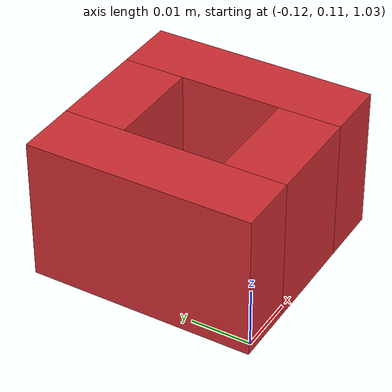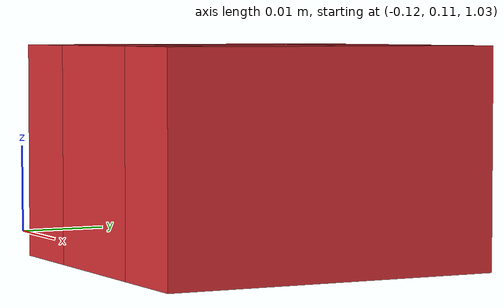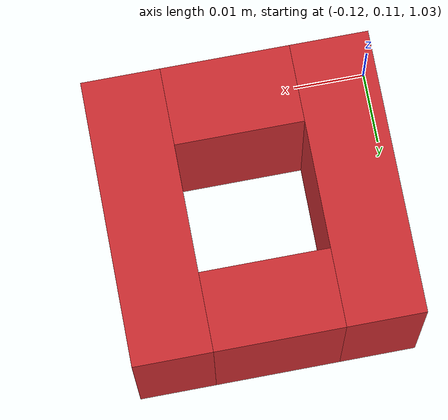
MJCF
<mujoco model="hanoi_disk_medium">
  <asset>
    <material name="hanoi_disk_medium_mat" rgba="0.82 0.18 0.20 1" specular="0.35" shininess="0.18"/>
    <material name="hanoi_disk_medium_collision_mat" rgba="0.55 0.55 0.55 1" specular="0.0" shininess="0.0" reflectance="0.0"/>
  </asset>

  <worldbody>
    <body name="hanoi_disk_medium" pos="-0.10 0.13 1.03950">
      <freejoint name="hanoi_disk_medium_joint"/>

      <!-- Parameters:
           inner_half = 0.01748
           outer_half = 0.03885
           pos = 0.028165
           thickness = 0.010685 -->

      <!-- Y-direction plates -->
      <geom name="hanoi_disk_medium_visual_pos_y" type="box" pos="0 0.0140825 0" size="0.00874 0.0053425 0.012375"
            material="hanoi_disk_medium_mat" contype="0" conaffinity="0" density="0" group="1"/>
      <geom name="hanoi_disk_medium_visual_neg_y" type="box" pos="0 -0.0140825 0" size="0.00874 0.0053425 0.012375"
            material="hanoi_disk_medium_mat" contype="0" conaffinity="0" density="0" group="1"/>

      <!-- X-direction plates -->
      <geom name="hanoi_disk_medium_visual_pos_x" type="box" pos="0.0140825 0 0" size="0.0053425 0.019425 0.012375"
            material="hanoi_disk_medium_mat" contype="0" conaffinity="0" density="0" group="1"/>
      <geom name="hanoi_disk_medium_visual_neg_x" type="box" pos="-0.0140825 0 0" size="0.0053425 0.019425 0.012375"
            material="hanoi_disk_medium_mat" contype="0" conaffinity="0" density="0" group="1"/>

      <!-- Collision geometry (identical to visual geometry) -->
      <geom name="hanoi_disk_medium_collision_pos_y" type="box" pos="0 0.0140825 0" size="0.00874 0.0053425 0.012375"
            material="hanoi_disk_medium_collision_mat" density="100" mass="0.025" friction="1.1 0.02 0.002" group="3"/>
      <geom name="hanoi_disk_medium_collision_neg_y" type="box" pos="0 -0.0140825 0" size="0.00874 0.0053425 0.012375"
            material="hanoi_disk_medium_collision_mat" density="100" mass="0.025" friction="1.1 0.02 0.002" group="3"/>
      <geom name="hanoi_disk_medium_collision_pos_x" type="box" pos="0.0140825 0 0" size="0.0053425 0.019425 0.012375"
            material="hanoi_disk_medium_collision_mat" density="100" mass="0.025" friction="1.1 0.02 0.002" group="3"/>
      <geom name="hanoi_disk_medium_collision_neg_x" type="box" pos="-0.0140825 0 0" size="0.0053425 0.019425 0.012375"
            material="hanoi_disk_medium_collision_mat" density="100" mass="0.025" friction="1.1 0.02 0.002" group="3"/>

      <!-- Reference sites -->
      <site name="hanoi_disk_medium_center_site" pos="0 0 0" size="0.002" rgba="0 0 0 0"/>
      <site name="hanoi_disk_medium_top_site" pos="0 0 0.012375" size="0.002" rgba="0 0 0 0"/>
      <site name="hanoi_disk_medium_bottom_site" pos="0 0 -0.012375" size="0.002" rgba="0 0 0 0"/>

    </body>
  </worldbody>
</mujoco>
